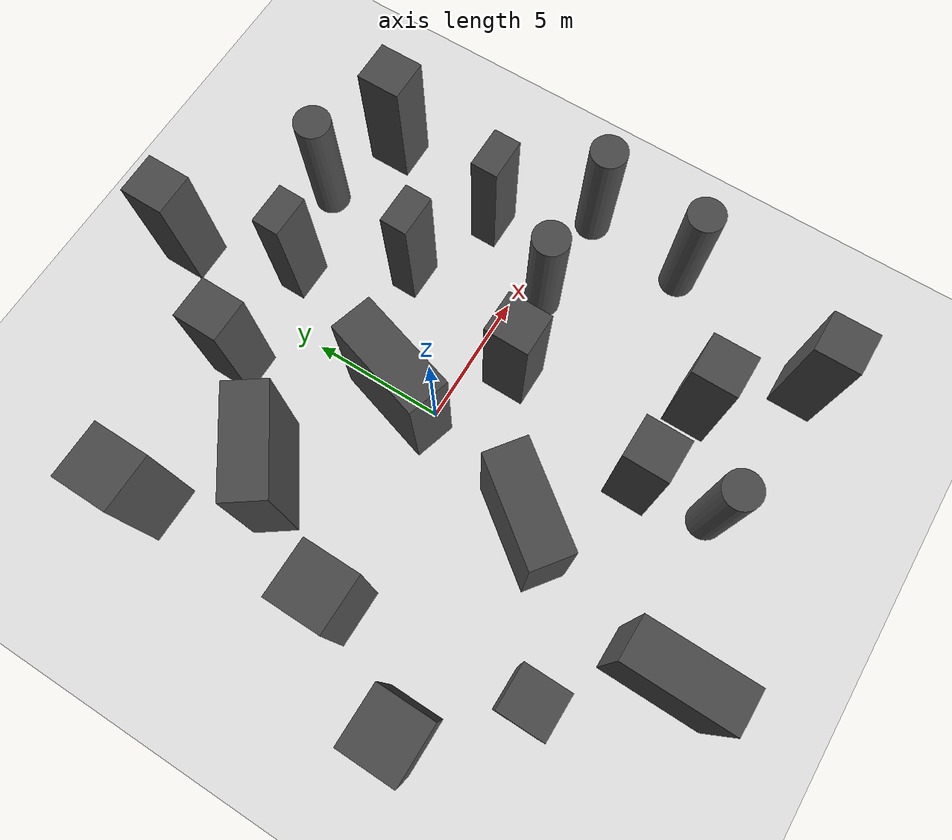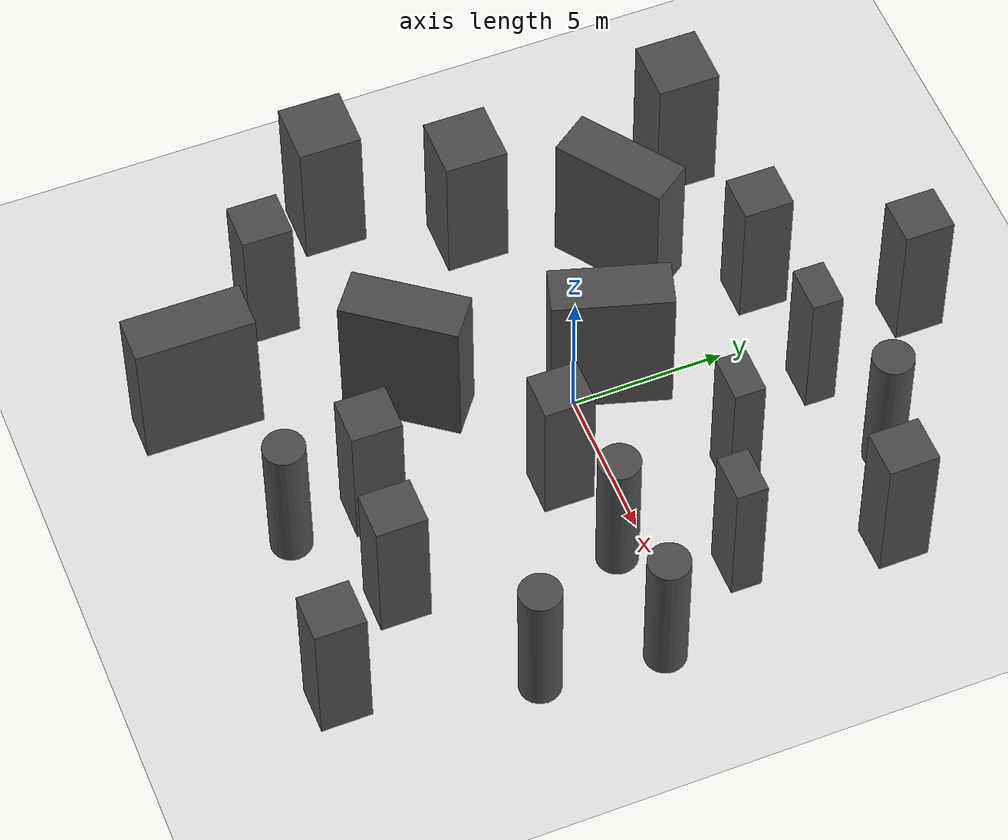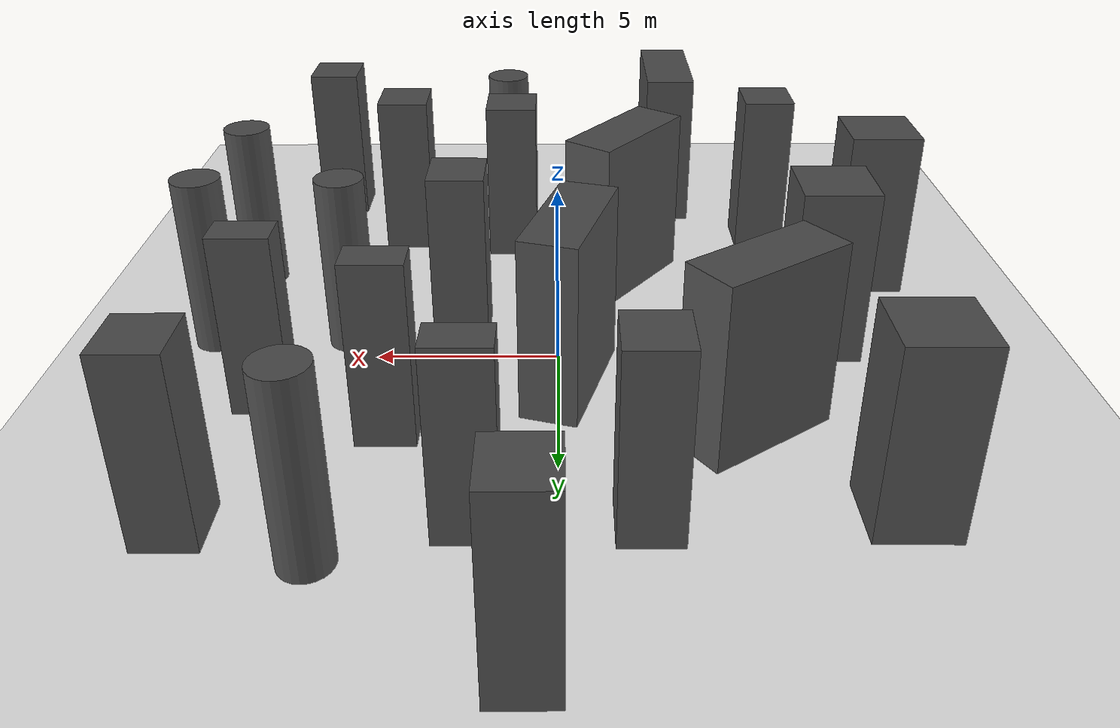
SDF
<sdf version="1.7">
 <world name="default">
  <light name="sun" type="directional">
   <pose>0 0 10 0 -0 0</pose>
   <diffuse>0.8 0.8 0.8 1</diffuse>
   <specular>0.2 0.2 0.2 1</specular>
   <attenuation>
    <range>1000</range>
    <constant>0.9</constant>
    <linear>0.01</linear>
    <quadratic>0.001</quadratic>
   </attenuation>
   <direction>-0.5 0.1 -0.9</direction>
   <spot><inner_angle>0</inner_angle><outer_angle>0</outer_angle><falloff>0</falloff></spot>
  </light>
  <model name="ground_plane">
   <static>1</static>
   <link name="link">
    <collision name="collision">
     <geometry><plane><normal>0 0 1</normal><size>100 100</size></plane></geometry>
     <surface>
      <contact><collide_bitmask>65535</collide_bitmask></contact>
      <friction><ode><mu>100</mu><mu2>50</mu2></ode></friction>
     </surface>
    </collision>
    <visual name="visual">
     <cast_shadows>0</cast_shadows>
     <geometry><plane><normal>0 0 1</normal><size>100 100</size></plane></geometry>
     <material>
      <script><uri>file://media/materials/scripts/gazebo.material</uri><name>Gazebo/White</name></script>
     </material>
    </visual>
   </link>
  </model>
  <gravity>0 0 0</gravity>
  <magnetic_field>6e-06 2.3e-05 -4.2e-05</magnetic_field>
  <atmosphere type="adiabatic"/>
  <physics type="ode">
   <max_step_size>0.001</max_step_size>
   <real_time_factor>1</real_time_factor>
   <real_time_update_rate>1000</real_time_update_rate>
  </physics>
  <scene><ambient>0.4 0.4 0.4 1</ambient><background>0.7 0.7 0.7 1</background><shadows>1</shadows></scene>
  <spherical_coordinates>
   <surface_model>EARTH_WGS84</surface_model>
   <latitude_deg>0</latitude_deg>
   <longitude_deg>0</longitude_deg>
   <elevation>0</elevation>
   <heading_deg>0</heading_deg>
  </spherical_coordinates>
  <model name="unit_box_clone_1">
   <pose>2.02638 7.17536 2.5 1e-06 -1e-06 -0.009075</pose>
   <link name="link">
    <inertial>
     <mass>1</mass>
     <inertia>
      <ixx>0.166667</ixx>
      <ixy>0</ixy>
      <ixz>0</ixz>
      <iyy>0.166667</iyy>
      <iyz>0</iyz>
      <izz>0.166667</izz>
     </inertia>
    </inertial>
    <collision name="collision"><geometry><box><size>1.54092 1 5</size></box></geometry></collision>
    <visual name="visual">
     <geometry><box><size>1.54092 1 5</size></box></geometry>
     <material>
      <script><name>Gazebo/DarkGrey</name><uri>file://media/materials/scripts/gazebo.material</uri></script>
     </material>
    </visual>
   </link>
   <static>1</static>
  </model>
  <model name="unit_box_clone_2">
   <pose>4.23248 3.63531 2.5 1e-06 -1e-06 -0.01113</pose>
   <link name="link">
    <inertial>
     <mass>1</mass>
     <inertia>
      <ixx>0.166667</ixx>
      <ixy>0</ixy>
      <ixz>0</ixz>
      <iyy>0.166667</iyy>
      <iyz>0</iyz>
      <izz>0.166667</izz>
     </inertia>
    </inertial>
    <collision name="collision"><geometry><box><size>1.54092 1 5</size></box></geometry></collision>
    <visual name="visual">
     <geometry><box><size>1.54092 1 5</size></box></geometry>
     <material>
      <script><name>Gazebo/DarkGrey</name><uri>file://media/materials/scripts/gazebo.material</uri></script>
     </material>
    </visual>
   </link>
   <static>1</static>
  </model>
  <model name="unit_box_clone_8">
   <pose>7.59466 2.23102 2.5 -0 -1e-06 -0.002688</pose>
   <link name="link">
    <inertial>
     <mass>1</mass>
     <inertia>
      <ixx>0.166667</ixx>
      <ixy>0</ixy>
      <ixz>0</ixz>
      <iyy>0.166667</iyy>
      <iyz>0</iyz>
      <izz>0.166667</izz>
     </inertia>
    </inertial>
    <collision name="collision"><geometry><box><size>1.54092 1 5</size></box></geometry></collision>
    <visual name="visual">
     <geometry><box><size>1.54092 1 5</size></box></geometry>
     <material>
      <script><name>Gazebo/DarkGrey</name><uri>file://media/materials/scripts/gazebo.material</uri></script>
     </material>
    </visual>
   </link>
   <static>1</static>
  </model>
  <model name="unit_cylinder_clone_1">
   <pose>9.24273 -4.85106 2.5 0 -0 0.002314</pose>
   <link name="link">
    <inertial>
     <mass>1</mass>
     <inertia><ixx>0.145833</ixx><ixy>0</ixy><ixz>0</ixz><iyy>0.145833</iyy><iyz>0</iyz><izz>0.125</izz></inertia>
    </inertial>
    <collision name="collision">
     <geometry><cylinder><radius>0.66506</radius><length>5</length></cylinder></geometry>
    </collision>
    <visual name="visual">
     <geometry><cylinder><radius>0.66506</radius><length>5</length></cylinder></geometry>
     <material>
      <script><name>Gazebo/DarkGrey</name><uri>file://media/materials/scripts/gazebo.material</uri></script>
     </material>
    </visual>
   </link>
   <static>1</static>
  </model>
  <model name="unit_cylinder_clone_2">
   <pose>5.83248 -0.958054 2.49999 0 -0 0.001531</pose>
   <link name="link">
    <inertial>
     <mass>1</mass>
     <inertia><ixx>0.145833</ixx><ixy>0</ixy><ixz>0</ixz><iyy>0.145833</iyy><iyz>0</iyz><izz>0.125</izz></inertia>
    </inertial>
    <collision name="collision">
     <geometry><cylinder><radius>0.66506</radius><length>5</length></cylinder></geometry>
    </collision>
    <visual name="visual">
     <geometry><cylinder><radius>0.66506</radius><length>5</length></cylinder></geometry>
     <material>
      <script><name>Gazebo/DarkGrey</name><uri>file://media/materials/scripts/gazebo.material</uri></script>
     </material>
    </visual>
   </link>
   <static>1</static>
  </model>
  <model name="unit_cylinder_clone_4">
   <pose>9.64809 -0.978469 2.5 0 -0 0.001461</pose>
   <link name="link">
    <inertial>
     <mass>1</mass>
     <inertia><ixx>0.145833</ixx><ixy>0</ixy><ixz>0</ixz><iyy>0.145833</iyy><iyz>0</iyz><izz>0.125</izz></inertia>
    </inertial>
    <collision name="collision">
     <geometry><cylinder><radius>0.66506</radius><length>5</length></cylinder></geometry>
    </collision>
    <visual name="visual">
     <geometry><cylinder><radius>0.66506</radius><length>5</length></cylinder></geometry>
     <material>
      <script><name>Gazebo/DarkGrey</name><uri>file://media/materials/scripts/gazebo.material</uri></script>
     </material>
    </visual>
   </link>
   <static>1</static>
  </model>
  <model name="unit_cylinder_clone_5">
   <pose>5.35637 8.15732 2.49999 0 -0 0.001504</pose>
   <link name="link">
    <inertial>
     <mass>1</mass>
     <inertia><ixx>0.145833</ixx><ixy>0</ixy><ixz>0</ixz><iyy>0.145833</iyy><iyz>0</iyz><izz>0.125</izz></inertia>
    </inertial>
    <collision name="collision">
     <geometry><cylinder><radius>0.66506</radius><length>5</length></cylinder></geometry>
    </collision>
    <visual name="visual">
     <geometry><cylinder><radius>0.66506</radius><length>5</length></cylinder></geometry>
     <material>
      <script><name>Gazebo/DarkGrey</name><uri>file://media/materials/scripts/gazebo.material</uri></script>
     </material>
    </visual>
   </link>
   <static>1</static>
  </model>
  <model name="unit_cylinder_clone_11">
   <pose>1.64714 -9.97184 2.5 0 -0 0.001475</pose>
   <link name="link">
    <inertial>
     <mass>1</mass>
     <inertia><ixx>0.145833</ixx><ixy>0</ixy><ixz>0</ixz><iyy>0.145833</iyy><iyz>0</iyz><izz>0.125</izz></inertia>
    </inertial>
    <collision name="collision">
     <geometry><cylinder><radius>0.66506</radius><length>5</length></cylinder></geometry>
    </collision>
    <visual name="visual">
     <geometry><cylinder><radius>0.66506</radius><length>5</length></cylinder></geometry>
     <material>
      <script><name>Gazebo/DarkGrey</name><uri>file://media/materials/scripts/gazebo.material</uri></script>
     </material>
    </visual>
   </link>
   <static>1</static>
  </model>
  <model name="unit_box_clone_4_clone">
   <pose>7.56607 -10.6468 2.5 0 -0 0.00143</pose>
   <link name="link">
    <inertial>
     <mass>1</mass>
     <inertia>
      <ixx>0.166667</ixx>
      <ixy>0</ixy>
      <ixz>0</ixz>
      <iyy>0.166667</iyy>
      <iyz>0</iyz>
      <izz>0.166667</izz>
     </inertia>
    </inertial>
    <collision name="collision"><geometry><box><size>1.54092 1.6222 5</size></box></geometry></collision>
    <visual name="visual">
     <geometry><box><size>1.54092 1.6222 5</size></box></geometry>
     <material>
      <script><name>Gazebo/DarkGrey</name><uri>file://media/materials/scripts/gazebo.material</uri></script>
     </material>
    </visual>
   </link>
   <static>1</static>
  </model>
  <model name="unit_box_clone_4_clone_0">
   <pose>1.44344 -7.22804 2.5 0 0 -0.009404</pose>
   <link name="link">
    <inertial>
     <mass>1</mass>
     <inertia>
      <ixx>0.166667</ixx>
      <ixy>0</ixy>
      <ixz>0</ixz>
      <iyy>0.166667</iyy>
      <iyz>0</iyz>
      <izz>0.166667</izz>
     </inertia>
    </inertial>
    <collision name="collision"><geometry><box><size>1.54092 1.6222 5</size></box></geometry></collision>
    <visual name="visual">
     <geometry><box><size>1.54092 1.6222 5</size></box></geometry>
     <material>
      <script><name>Gazebo/DarkGrey</name><uri>file://media/materials/scripts/gazebo.material</uri></script>
     </material>
    </visual>
   </link>
   <static>1</static>
  </model>
  <model name="unit_box_clone_4_clone_1">
   <pose>2.73259 -1.56589 2.5 0 0 -0.009406</pose>
   <link name="link">
    <inertial>
     <mass>1</mass>
     <inertia>
      <ixx>0.166667</ixx>
      <ixy>0</ixy>
      <ixz>0</ixz>
      <iyy>0.166667</iyy>
      <iyz>0</iyz>
      <izz>0.166667</izz>
     </inertia>
    </inertial>
    <collision name="collision"><geometry><box><size>1.54092 1.6222 5</size></box></geometry></collision>
    <visual name="visual">
     <geometry><box><size>1.54092 1.6222 5</size></box></geometry>
     <material>
      <script><name>Gazebo/DarkGrey</name><uri>file://media/materials/scripts/gazebo.material</uri></script>
     </material>
    </visual>
   </link>
   <static>1</static>
  </model>
  <model name="unit_box_clone_4_clone_3">
   <pose>0.670321 11.2183 2.5 0 -0 0.000955</pose>
   <link name="link">
    <inertial>
     <mass>1</mass>
     <inertia>
      <ixx>0.166667</ixx>
      <ixy>0</ixy>
      <ixz>0</ixz>
      <iyy>0.166667</iyy>
      <iyz>0</iyz>
      <izz>0.166667</izz>
     </inertia>
    </inertial>
    <collision name="collision"><geometry><box><size>1.54092 1.6222 5</size></box></geometry></collision>
    <visual name="visual">
     <geometry><box><size>1.54092 1.6222 5</size></box></geometry>
     <material>
      <script><name>Gazebo/DarkGrey</name><uri>file://media/materials/scripts/gazebo.material</uri></script>
     </material>
    </visual>
   </link>
   <static>1</static>
  </model>
  <model name="unit_box_clone_4_clone_4">
   <pose>-6.72913 -7.75281 2.5 0 0 -0.009053</pose>
   <link name="link">
    <inertial>
     <mass>1</mass>
     <inertia>
      <ixx>0.166667</ixx>
      <ixy>0</ixy>
      <ixz>0</ixz>
      <iyy>0.166667</iyy>
      <iyz>0</iyz>
      <izz>0.166667</izz>
     </inertia>
    </inertial>
    <collision name="collision"><geometry><box><size>1.54092 1.6222 5</size></box></geometry></collision>
    <visual name="visual">
     <geometry><box><size>1.54092 1.6222 5</size></box></geometry>
     <material>
      <script><name>Gazebo/DarkGrey</name><uri>file://media/materials/scripts/gazebo.material</uri></script>
     </material>
    </visual>
   </link>
   <static>1</static>
  </model>
  <model name="unit_box_clone_4_clone_5">
   <pose>8.46949 7.06372 2.5 0 -0 0.002176</pose>
   <link name="link">
    <inertial>
     <mass>1</mass>
     <inertia>
      <ixx>0.166667</ixx>
      <ixy>0</ixy>
      <ixz>0</ixz>
      <iyy>0.166667</iyy>
      <iyz>0</iyz>
      <izz>0.166667</izz>
     </inertia>
    </inertial>
    <collision name="collision"><geometry><box><size>1.54092 1.6222 5</size></box></geometry></collision>
    <visual name="visual">
     <geometry><box><size>1.54092 1.6222 5</size></box></geometry>
     <material>
      <script><name>Gazebo/DarkGrey</name><uri>file://media/materials/scripts/gazebo.material</uri></script>
     </material>
    </visual>
   </link>
   <static>1</static>
  </model>
  <model name="unit_box_clone_4_clone_5_clone_0">
   <pose>4.89993 -7.75204 2.5 -1e-06 0 -0.002179</pose>
   <link name="link">
    <inertial>
     <mass>1</mass>
     <inertia>
      <ixx>0.166667</ixx>
      <ixy>0</ixy>
      <ixz>0</ixz>
      <iyy>0.166667</iyy>
      <iyz>0</iyz>
      <izz>0.166667</izz>
     </inertia>
    </inertial>
    <collision name="collision"><geometry><box><size>1.54092 1.6222 5</size></box></geometry></collision>
    <visual name="visual">
     <geometry><box><size>1.54092 1.6222 5</size></box></geometry>
     <material>
      <script><name>Gazebo/DarkGrey</name><uri>file://media/materials/scripts/gazebo.material</uri></script>
     </material>
    </visual>
   </link>
   <static>1</static>
  </model>
  <model name="unit_box_clone_4_clone_1_clone">
   <pose>-2.00001 7.00001 2.5 -1e-06 -0 -0.008777</pose>
   <link name="link">
    <inertial>
     <mass>1</mass>
     <inertia>
      <ixx>0.166667</ixx>
      <ixy>0</ixy>
      <ixz>0</ixz>
      <iyy>0.166667</iyy>
      <iyz>0</iyz>
      <izz>0.166667</izz>
     </inertia>
    </inertial>
    <collision name="collision"><geometry><box><size>1.54092 1.6222 5</size></box></geometry></collision>
    <visual name="visual">
     <geometry><box><size>1.54092 1.6222 5</size></box></geometry>
     <material>
      <script><name>Gazebo/DarkGrey</name><uri>file://media/materials/scripts/gazebo.material</uri></script>
     </material>
    </visual>
   </link>
   <static>1</static>
  </model>
  <model name="unit_box_clone_4_clone_1_clone_0">
   <pose>-4.87352 3.52525 2.5 -1e-06 -0 -0.958957</pose>
   <link name="link">
    <inertial>
     <mass>1</mass>
     <inertia>
      <ixx>0.166667</ixx>
      <ixy>0</ixy>
      <ixz>0</ixz>
      <iyy>0.166667</iyy>
      <iyz>0</iyz>
      <izz>0.166667</izz>
     </inertia>
    </inertial>
    <collision name="collision"><geometry><box><size>1.54092 3.82155 5</size></box></geometry></collision>
    <visual name="visual">
     <geometry><box><size>1.54092 3.82155 5</size></box></geometry>
     <material>
      <script><name>Gazebo/DarkGrey</name><uri>file://media/materials/scripts/gazebo.material</uri></script>
     </material>
    </visual>
   </link>
   <static>1</static>
  </model>
  <model name="unit_box_clone_4_clone_1_clone_0_clone">
   <pose>-2.00285 -4.75959 2.5 -1e-06 0 -0.649656</pose>
   <link name="link">
    <inertial>
     <mass>1</mass>
     <inertia>
      <ixx>0.166667</ixx>
      <ixy>0</ixy>
      <ixz>0</ixz>
      <iyy>0.166667</iyy>
      <iyz>0</iyz>
      <izz>0.166667</izz>
     </inertia>
    </inertial>
    <collision name="collision"><geometry><box><size>1.54092 3.82155 5</size></box></geometry></collision>
    <visual name="visual">
     <geometry><box><size>1.54092 3.82155 5</size></box></geometry>
     <material>
      <script><name>Gazebo/DarkGrey</name><uri>file://media/materials/scripts/gazebo.material</uri></script>
     </material>
    </visual>
   </link>
   <static>1</static>
  </model>
  <model name="unit_box_clone_4_clone_1_clone_0_clone_0">
   <pose>-0.286837 1.31177 2.5 0 0 -0.294978</pose>
   <link name="link">
    <inertial>
     <mass>1</mass>
     <inertia>
      <ixx>0.166667</ixx>
      <ixy>0</ixy>
      <ixz>0</ixz>
      <iyy>0.166667</iyy>
      <iyz>0</iyz>
      <izz>0.166667</izz>
     </inertia>
    </inertial>
    <collision name="collision"><geometry><box><size>1.54092 3.82155 5</size></box></geometry></collision>
    <visual name="visual">
     <geometry><box><size>1.54092 3.82155 5</size></box></geometry>
     <material>
      <script><name>Gazebo/DarkGrey</name><uri>file://media/materials/scripts/gazebo.material</uri></script>
     </material>
    </visual>
   </link>
   <static>1</static>
  </model>
  <model name="unit_box_clone_4_clone_1_clone_0_clone_1">
   <pose>-3.81075 -11.0964 2.5 1e-06 -0 -0.009103</pose>
   <link name="link">
    <inertial>
     <mass>1</mass>
     <inertia>
      <ixx>0.166667</ixx>
      <ixy>0</ixy>
      <ixz>0</ixz>
      <iyy>0.166667</iyy>
      <iyz>0</iyz>
      <izz>0.166667</izz>
     </inertia>
    </inertial>
    <collision name="collision"><geometry><box><size>1.54092 3.82155 5</size></box></geometry></collision>
    <visual name="visual">
     <geometry><box><size>1.54092 3.82155 5</size></box></geometry>
     <material>
      <script><name>Gazebo/DarkGrey</name><uri>file://media/materials/scripts/gazebo.material</uri></script>
     </material>
    </visual>
   </link>
   <static>1</static>
  </model>
  <model name="unit_box_clone_4_clone_1_clone_clone">
   <pose>-7.79325 6.69609 2.5 -0 1e-06 -0.00897</pose>
   <link name="link">
    <inertial>
     <mass>1</mass>
     <inertia>
      <ixx>0.166667</ixx>
      <ixy>0</ixy>
      <ixz>0</ixz>
      <iyy>0.166667</iyy>
      <iyz>0</iyz>
      <izz>0.166667</izz>
     </inertia>
    </inertial>
    <collision name="collision"><geometry><box><size>2.04132 2.03051 5</size></box></geometry></collision>
    <visual name="visual">
     <geometry><box><size>2.04132 2.03051 5</size></box></geometry>
     <material>
      <script><name>Gazebo/DarkGrey</name><uri>file://media/materials/scripts/gazebo.material</uri></script>
     </material>
    </visual>
   </link>
   <static>1</static>
  </model>
  <model name="unit_box_clone_4_clone_1_clone_clone_clone">
   <pose>-7.36256 -0.70057 2.5 0 0 -0.009503</pose>
   <link name="link">
    <inertial>
     <mass>1</mass>
     <inertia>
      <ixx>0.166667</ixx>
      <ixy>0</ixy>
      <ixz>0</ixz>
      <iyy>0.166667</iyy>
      <iyz>0</iyz>
      <izz>0.166667</izz>
     </inertia>
    </inertial>
    <collision name="collision"><geometry><box><size>2.04132 2.03051 5</size></box></geometry></collision>
    <visual name="visual">
     <geometry><box><size>2.04132 2.03051 5</size></box></geometry>
     <material>
      <script><name>Gazebo/DarkGrey</name><uri>file://media/materials/scripts/gazebo.material</uri></script>
     </material>
    </visual>
   </link>
   <static>1</static>
  </model>
  <model name="unit_box_clone_4_clone_1_clone_clone_clone_0">
   <pose>-9.603 -4.72782 2.5 0 1e-06 -0.009455</pose>
   <link name="link">
    <inertial>
     <mass>1</mass>
     <inertia>
      <ixx>0.166667</ixx>
      <ixy>0</ixy>
      <ixz>0</ixz>
      <iyy>0.166667</iyy>
      <iyz>0</iyz>
      <izz>0.166667</izz>
     </inertia>
    </inertial>
    <collision name="collision"><geometry><box><size>2.04132 2.03051 5</size></box></geometry></collision>
    <visual name="visual">
     <geometry><box><size>2.04132 2.03051 5</size></box></geometry>
     <material>
      <script><name>Gazebo/DarkGrey</name><uri>file://media/materials/scripts/gazebo.material</uri></script>
     </material>
    </visual>
   </link>
   <static>1</static>
  </model>
 </world>
</sdf>
